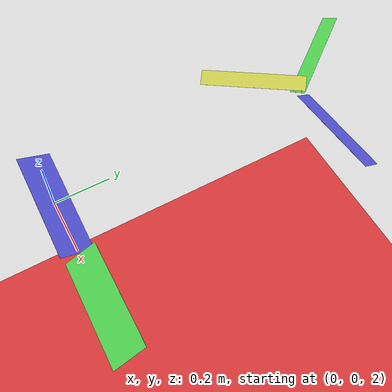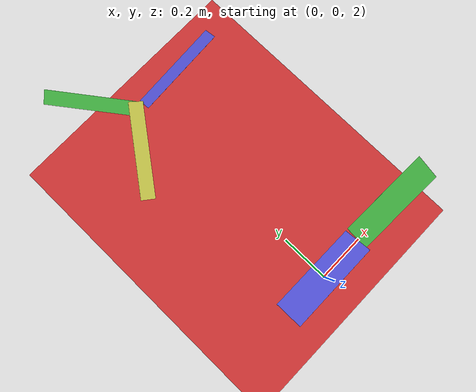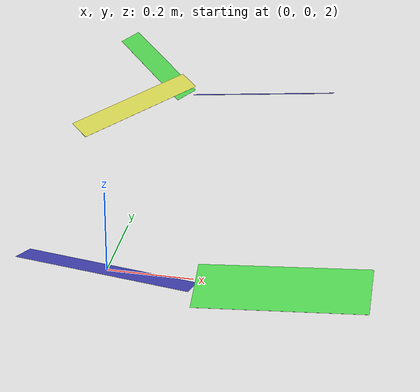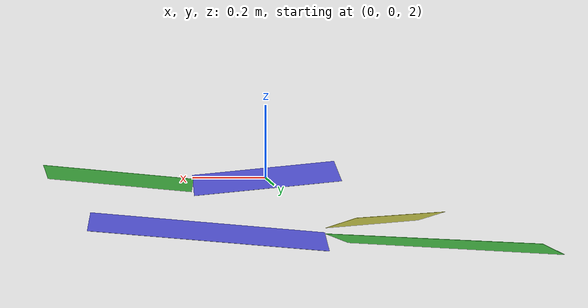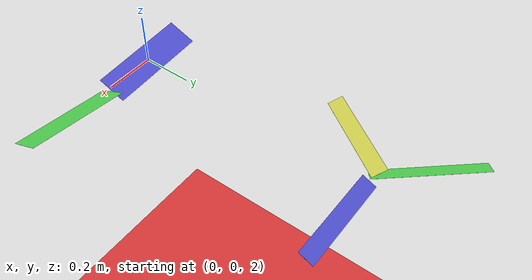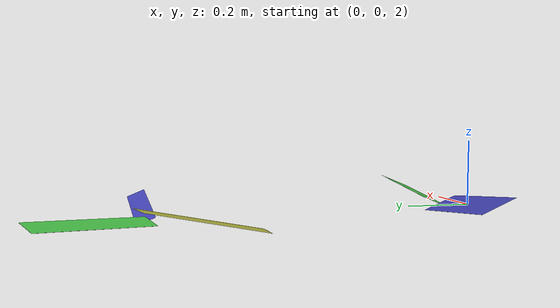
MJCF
<mujoco model="leaf">
	<compiler inertiafromgeom="true" coordinate="local"/>
	<option	timestep="0.001" gravity="0 0 -9.81" density="1" viscosity="1e-5" />

	<worldbody>
		<geom name="floor" pos="0 0 0" size="2 2 .2" type="plane"  conaffinity="1" rgba="0.8 0.2 0.2 1" condim="3"/>
		<body name="leaf" pos="0 0 2" >
			<geom name="g0" type="box" pos="0 0 0" quat = "1 -0.2 0.05 0" size="0.2 0.06 0.0002"  rgba="0.3 0.3 0.8 1" mass = ".001"/>
			<joint name="root" type="free" damping="0" armature="0"/>
			<body name="l1" pos="0.4 0 0" >
				<geom name="g1" type="box" pos="0 0 0" size="0.2 0.06 0.0002"  quat = "1 0.2 -.05 0" rgba="0.3 0.8 0.3 1" mass = ".001"/>
			</body>
		</body>

		<body name="leaf2" pos="0 1 2" >
			<geom name="g2" type="box" pos="0.2 0 0" quat = "1 -0.2 -0.05 0" size="0.2 0.03 0.0002"  rgba="0.3 0.3 0.8 1" mass = ".001"/>
			<joint name="root1" type="free" damping="0" armature="0"/>
			<body name="l2" pos="-.14 .14 0" >
				<geom name="g3" type="box" pos="0 0 0" size="0.2 0.03 0.0002"  quat = "1 0.2 -.05 -.5" rgba="0.3 0.8 0.3 1" mass = ".001"/>
			</body>
			<body name="l3" pos="-.14 -.14 0" >
				<geom name="g4" type="box" pos="0 0 0" size="0.2 0.03 0.0002"  quat = "1 0.2 .05 .5" rgba="0.8 0.8 0.3 1" mass = ".001"/>
			</body>
		</body>

	</worldbody>

</mujoco>
